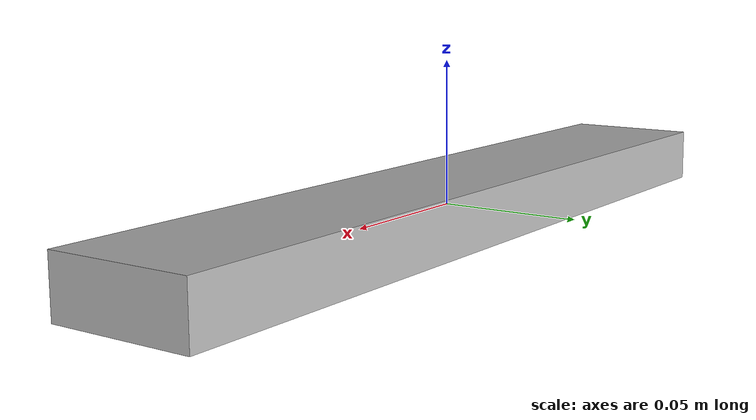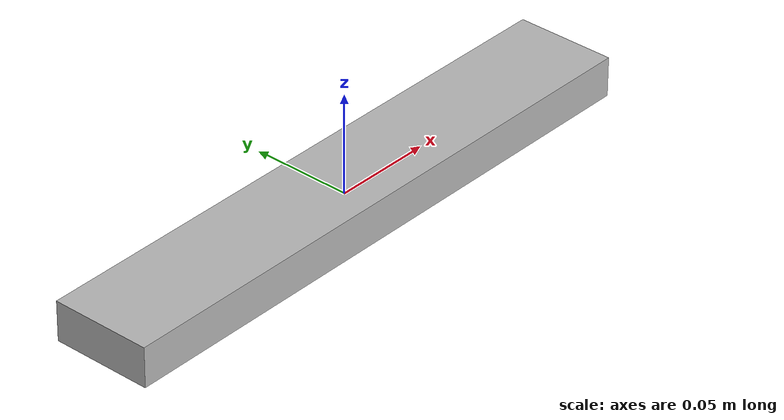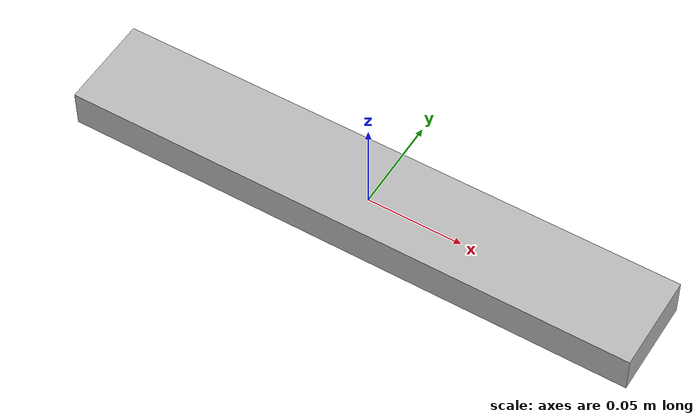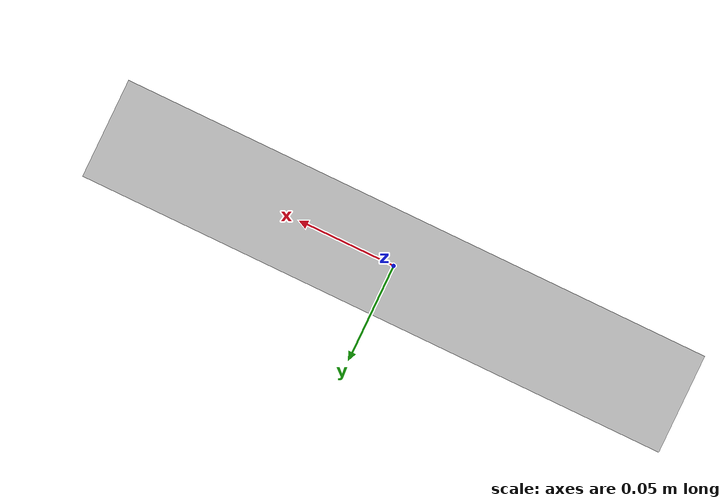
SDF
<sdf version="1.7">
  <model name="monkey_wrench">
    <static>false</static>
    <link name="link">
      <visual name="visual">
        <geometry>
          <box>
            <size>0.3 0.05 0.02</size>
          </box>
        </geometry>
      </visual>
    </link>
  </model>
</sdf>
